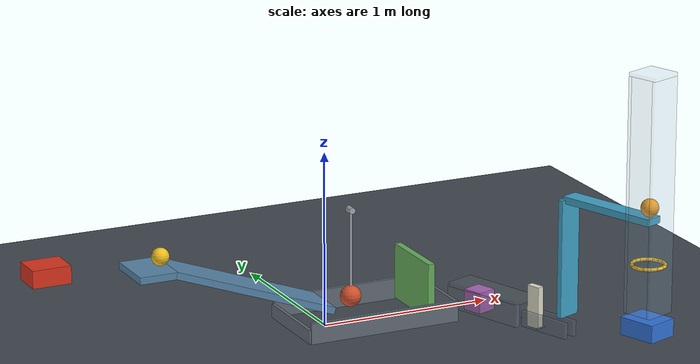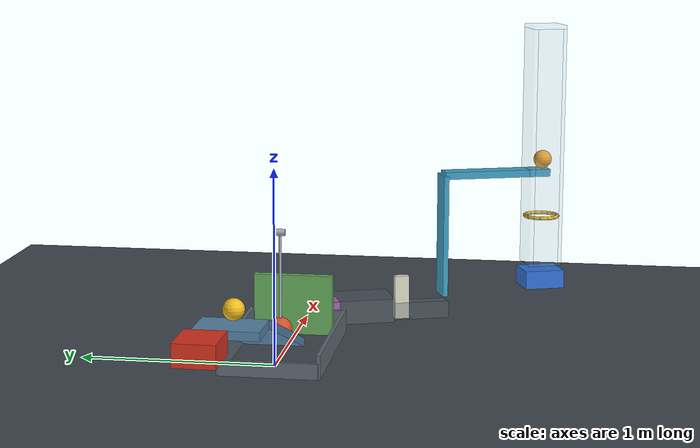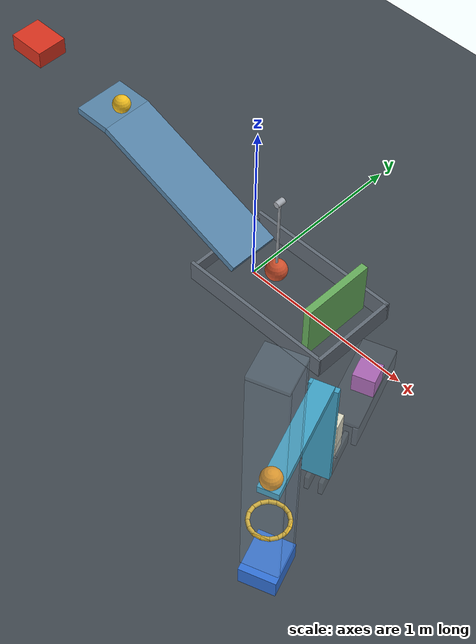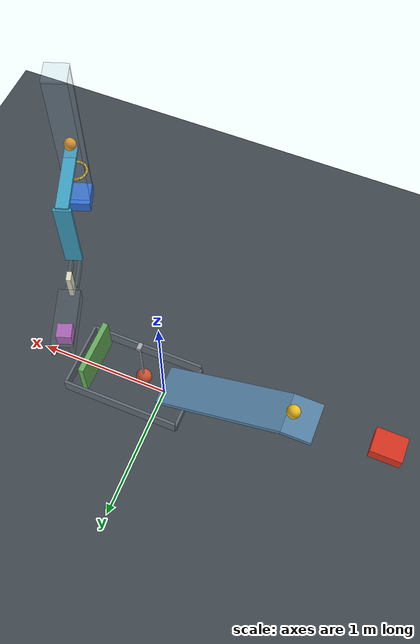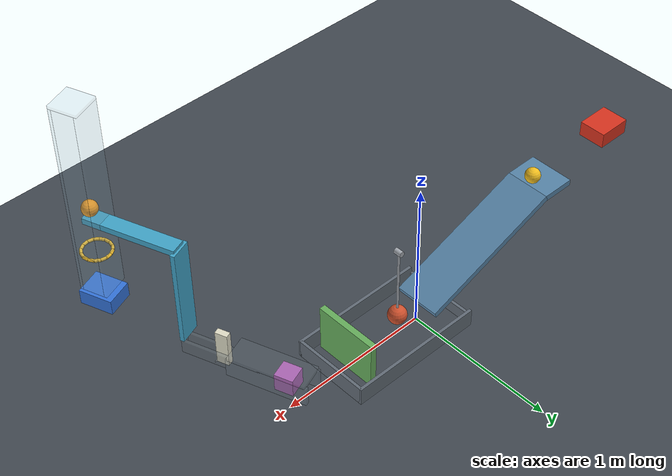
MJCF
<mujoco model="revised_guided_chain">
  <compiler angle="degree" autolimits="true"/>
  <option timestep="0.002" gravity="0 0 -9.81" integrator="implicitfast" cone="elliptic" iterations="100"/>
  <size njmax="5000" nconmax="1000"/>

  <visual>
    <headlight ambient="0.35 0.35 0.35" diffuse="0.65 0.65 0.65" specular="0.2 0.2 0.2"/>
    <map znear="0.01" zfar="30"/>
  </visual>

  <worldbody>
    <light name="main_light" pos="-1 -3 5" dir="0.2 0.4 -1" directional="true"/>
    <camera name="overview" pos="0 -4.8 3.0" xyaxes="1 0 0 0 0.48 0.877"/>

    <geom name="floor" type="plane" size="5 5 0.1" friction="0.68 0.005 0.005" condim="6" solref="0.006 0.6901" solimp="0.95 0.99 0.001" rgba="0.25 0.28 0.31 1"/>

    <!-- Compression-only axial spring: 0.20 m compression at reset, stiffness 18 N/m. -->
    <!-- Cart1 first contacts ball1 after 0.50 m of slide travel. -->
    <body name="cart1" pos="-1.63969262 0 0.54702014">
      <joint name="cart1_slide" type="slide" axis="1 0 0" damping="0.20" limited="true" range="0 0.58" solreflimit="0.006 1"/>
      <geom name="cart1_chassis" type="box" size="0.11 0.09 0.05" mass="0.50" friction="0.68 0.005 0.005" condim="6" solref="0.006 0.6901" solimp="0.95 0.99 0.001" rgba="0.85 0.20 0.12 1"/>
    </body>

    <body name="ball1" pos="-0.97969262 0 0.54202014">
      <freejoint name="ball1_free"/>
      <geom name="ball1_sphere" type="sphere" size="0.05" mass="0.20" friction="0.68 0.005 0.005" condim="6" solref="0.006 0.6901" solimp="0.95 0.99 0.001" rgba="0.95 0.75 0.12 1"/>
    </body>

    <!-- Incline length 1.00 m, width 0.30 m, slope 20 degrees, low end z=0.15 m. -->
    <body name="ramp1" pos="0 0 0">
      <geom name="ramp1_incline" type="box" pos="-0.47668671 0 0.30221629" quat="0.98480775 0 0.17364818 0" size="0.50 0.15 0.02" friction="0.68 0.005 0.005" condim="6" solref="0.006 0.6901" solimp="0.95 0.99 0.001" rgba="0.34 0.52 0.66 1"/>
      <geom name="ramp1_launch_shelf" type="box" pos="-1.04969262 0 0.47202014" size="0.11 0.15 0.02" friction="0.68 0.005 0.005" condim="6" solref="0.006 0.6901" solimp="0.95 0.99 0.001" rgba="0.34 0.52 0.66 1"/>
    </body>

    <!-- Pivot-to-bob distance 0.50 m; component masses total 0.35 kg. -->
    <!-- Initial bob near surface is 0.10 m beyond the ramp's low end. -->
    <body name="pendulum1" pos="0.16 0 0.65">
      <joint name="pendulum1_hinge" type="hinge" axis="0 -1 0" damping="0.04" limited="true" range="0 40" solreflimit="0.006 1"/>
      <geom name="pendulum1_hub" type="cylinder" quat="0.70710678 0.70710678 0 0" size="0.018 0.025" mass="0.01" friction="0.68 0.005 0.005" condim="6" solref="0.006 0.6901" solimp="0.95 0.99 0.001" rgba="0.65 0.67 0.70 1"/>
      <geom name="pendulum1_rod" type="capsule" fromto="0 0 0 0 0 -0.50" size="0.007" mass="0.04" friction="0.68 0.005 0.005" condim="6" solref="0.006 0.6901" solimp="0.95 0.99 0.001" rgba="0.65 0.67 0.70 1"/>
      <geom name="pendulum1_bob" type="sphere" pos="0 0 -0.50" size="0.06" mass="0.30" friction="0.68 0.005 0.005" condim="6" solref="0.006 0.6901" solimp="0.95 0.99 0.001" rgba="0.82 0.32 0.18 1"/>
    </body>

    <!-- Door panel: 0.42 m wide, 0.32 m high, 0.04 m thick. -->
    <body name="door1" pos="0.557 -0.21 0.18">
      <joint name="door1_hinge" type="hinge" axis="0 0 -1" damping="0.04" limited="true" range="0 70" solreflimit="0.006 1"/>
      <geom name="door1_panel" type="box" pos="0 0.21 0" size="0.02 0.21 0.16" mass="0.45" friction="0.68 0.005 0.005" condim="6" solref="0.006 0.6901" solimp="0.95 0.99 0.001" rgba="0.40 0.68 0.36 1"/>
    </body>

    <!-- Block moved inward along the panel and earlier along its swept path. -->
    <!-- Block travel direction is local +x, at world yaw -70 degrees. -->
    <!-- Initial block-front to domino-back separation remains 0.32 m. -->
    <body name="block1" pos="0.89957371 -0.12788117 0.06" quat="0.81915204 0 0 -0.57357644">
      <freejoint name="block1_free"/>
      <geom name="block1_cube" type="box" size="0.06 0.06 0.06" mass="0.35" friction="0.68 0.005 0.005" condim="6" solref="0.006 0.6901" solimp="0.95 0.99 0.001" rgba="0.73 0.38 0.75 1"/>
    </body>

    <!-- Close-clearance guides prevent tumbling; explicit normal-only pairs model ideal guide bearings. -->
    <!-- Block-floor contact retains sliding friction 0.68. -->
    <body name="block1_guide" pos="0.89957371 -0.12788117 0" quat="0.81915204 0 0 -0.57357644">
      <geom name="block1_guide_left" type="box" pos="0.10 -0.075 0.065" size="0.26 0.013 0.065" friction="0.68 0.005 0.005" condim="6" solref="0.006 0.6901" solimp="0.95 0.99 0.001" rgba="0.46 0.51 0.56 0.35"/>
      <geom name="block1_guide_right" type="box" pos="0.10 0.075 0.065" size="0.26 0.013 0.065" friction="0.68 0.005 0.005" condim="6" solref="0.006 0.6901" solimp="0.95 0.99 0.001" rgba="0.46 0.51 0.56 0.35"/>
      <geom name="block1_guide_roof" type="box" pos="0.10 0 0.135" size="0.25 0.088 0.012" friction="0.68 0.005 0.005" condim="6" solref="0.006 0.6901" solimp="0.95 0.99 0.001" rgba="0.46 0.51 0.56 0.20"/>
    </body>

    <body name="domino1" pos="1.04322221 -0.52255207 0.12" quat="0.81915204 0 0 -0.57357644">
      <freejoint name="domino1_free"/>
      <geom name="domino1_tile" type="box" size="0.04 0.02 0.12" mass="0.25" friction="0.68 0.005 0.005" condim="6" solref="0.006 0.6901" solimp="0.95 0.99 0.001" rgba="0.88 0.87 0.78 1"/>
    </body>

    <!-- Toe stop discourages translation of the domino's lower forward edge. -->
    <body name="domino1_guide" pos="1.04322221 -0.52255207 0" quat="0.81915204 0 0 -0.57357644">
      <geom name="domino1_guide_toe" type="capsule" fromto="0.044 -0.030 0.004 0.044 0.030 0.004" size="0.004" friction="0.68 0.005 0.005" condim="6" solref="0.006 0.6901" solimp="0.95 0.99 0.001" rgba="0.43 0.47 0.50 1"/>
      <geom name="domino1_guide_left" type="box" pos="0.10 -0.035 0.045" size="0.16 0.011 0.045" friction="0.68 0.005 0.005" condim="6" solref="0.006 0.6901" solimp="0.95 0.99 0.001" rgba="0.43 0.47 0.50 0.35"/>
      <geom name="domino1_guide_right" type="box" pos="0.10 0.035 0.045" size="0.16 0.011 0.045" friction="0.68 0.005 0.005" condim="6" solref="0.006 0.6901" solimp="0.95 0.99 0.001" rgba="0.43 0.47 0.50 0.35"/>
    </body>

    <!-- Main beam: 0.60 x 0.10 x 0.04 m, center hinge, total body mass 0.50 kg. -->
    <!-- Massless rigid striker reaches the floor-level domino. -->
    <!-- Initial domino-front to striker-front separation is approximately 0.18 m. -->
    <body name="lever1" pos="1.22586101 -1.02434417 0.80" quat="0.81915204 0 0 -0.57357644">
      <inertial pos="0 0 0" mass="0.50" diaginertia="0.0004833333 0.0150666667 0.0154166667"/>
      <joint name="lever1_hinge" type="hinge" axis="0 -1 0" damping="0.04" limited="true" range="0 45" solreflimit="0.006 1"/>
      <geom name="lever1_beam" type="box" size="0.30 0.05 0.02" mass="0.50" friction="0.68 0.005 0.005" condim="6" solref="0.006 0.6901" solimp="0.95 0.99 0.001" rgba="0.25 0.64 0.78 1"/>
      <geom name="lever1_left_striker" type="box" pos="-0.30 0 -0.3375" size="0.014 0.070 0.3375" mass="0" friction="0.68 0.005 0.005" condim="6" solref="0.006 0.6901" solimp="0.95 0.99 0.001" rgba="0.25 0.64 0.78 1"/>
    </body>

    <body name="ball2" pos="1.31820641 -1.27806117 0.87">
      <freejoint name="ball2_free"/>
      <geom name="ball2_sphere" type="sphere" size="0.05" mass="0.20" friction="0.68 0.005 0.005" condim="6" solref="0.006 0.6901" solimp="0.95 0.99 0.001" rgba="0.98 0.62 0.10 1"/>
    </body>

    <!-- Capsule polygon with an inscribed clear diameter of approximately 0.16 m. -->
    <!-- Horizontal ring center is 0.32 m directly below ball2's initial center. -->
    <body name="ring1" pos="1.31820641 -1.27806117 0.55">
      <geom name="ring1_segment_00" type="capsule" fromto="0.0917633 0 0 0.0847780 0.0351160 0" size="0.01" friction="0.68 0.005 0.005" condim="6" solref="0.006 0.6901" solimp="0.95 0.99 0.001" rgba="0.92 0.73 0.18 1"/>
      <geom name="ring1_segment_01" type="capsule" fromto="0.0847780 0.0351160 0 0.0648865 0.0648865 0" size="0.01" friction="0.68 0.005 0.005" condim="6" solref="0.006 0.6901" solimp="0.95 0.99 0.001" rgba="0.92 0.73 0.18 1"/>
      <geom name="ring1_segment_02" type="capsule" fromto="0.0648865 0.0648865 0 0.0351160 0.0847780 0" size="0.01" friction="0.68 0.005 0.005" condim="6" solref="0.006 0.6901" solimp="0.95 0.99 0.001" rgba="0.92 0.73 0.18 1"/>
      <geom name="ring1_segment_03" type="capsule" fromto="0.0351160 0.0847780 0 0 0.0917633 0" size="0.01" friction="0.68 0.005 0.005" condim="6" solref="0.006 0.6901" solimp="0.95 0.99 0.001" rgba="0.92 0.73 0.18 1"/>
      <geom name="ring1_segment_04" type="capsule" fromto="0 0.0917633 0 -0.0351160 0.0847780 0" size="0.01" friction="0.68 0.005 0.005" condim="6" solref="0.006 0.6901" solimp="0.95 0.99 0.001" rgba="0.92 0.73 0.18 1"/>
      <geom name="ring1_segment_05" type="capsule" fromto="-0.0351160 0.0847780 0 -0.0648865 0.0648865 0" size="0.01" friction="0.68 0.005 0.005" condim="6" solref="0.006 0.6901" solimp="0.95 0.99 0.001" rgba="0.92 0.73 0.18 1"/>
      <geom name="ring1_segment_06" type="capsule" fromto="-0.0648865 0.0648865 0 -0.0847780 0.0351160 0" size="0.01" friction="0.68 0.005 0.005" condim="6" solref="0.006 0.6901" solimp="0.95 0.99 0.001" rgba="0.92 0.73 0.18 1"/>
      <geom name="ring1_segment_07" type="capsule" fromto="-0.0847780 0.0351160 0 -0.0917633 0 0" size="0.01" friction="0.68 0.005 0.005" condim="6" solref="0.006 0.6901" solimp="0.95 0.99 0.001" rgba="0.92 0.73 0.18 1"/>
      <geom name="ring1_segment_08" type="capsule" fromto="-0.0917633 0 0 -0.0847780 -0.0351160 0" size="0.01" friction="0.68 0.005 0.005" condim="6" solref="0.006 0.6901" solimp="0.95 0.99 0.001" rgba="0.92 0.73 0.18 1"/>
      <geom name="ring1_segment_09" type="capsule" fromto="-0.0847780 -0.0351160 0 -0.0648865 -0.0648865 0" size="0.01" friction="0.68 0.005 0.005" condim="6" solref="0.006 0.6901" solimp="0.95 0.99 0.001" rgba="0.92 0.73 0.18 1"/>
      <geom name="ring1_segment_10" type="capsule" fromto="-0.0648865 -0.0648865 0 -0.0351160 -0.0847780 0" size="0.01" friction="0.68 0.005 0.005" condim="6" solref="0.006 0.6901" solimp="0.95 0.99 0.001" rgba="0.92 0.73 0.18 1"/>
      <geom name="ring1_segment_11" type="capsule" fromto="-0.0351160 -0.0847780 0 0 -0.0917633 0" size="0.01" friction="0.68 0.005 0.005" condim="6" solref="0.006 0.6901" solimp="0.95 0.99 0.001" rgba="0.92 0.73 0.18 1"/>
      <geom name="ring1_segment_12" type="capsule" fromto="0 -0.0917633 0 0.0351160 -0.0847780 0" size="0.01" friction="0.68 0.005 0.005" condim="6" solref="0.006 0.6901" solimp="0.95 0.99 0.001" rgba="0.92 0.73 0.18 1"/>
      <geom name="ring1_segment_13" type="capsule" fromto="0.0351160 -0.0847780 0 0.0648865 -0.0648865 0" size="0.01" friction="0.68 0.005 0.005" condim="6" solref="0.006 0.6901" solimp="0.95 0.99 0.001" rgba="0.92 0.73 0.18 1"/>
      <geom name="ring1_segment_14" type="capsule" fromto="0.0648865 -0.0648865 0 0.0847780 -0.0351160 0" size="0.01" friction="0.68 0.005 0.005" condim="6" solref="0.006 0.6901" solimp="0.95 0.99 0.001" rgba="0.92 0.73 0.18 1"/>
      <geom name="ring1_segment_15" type="capsule" fromto="0.0847780 -0.0351160 0 0.0917633 0 0" size="0.01" friction="0.68 0.005 0.005" condim="6" solref="0.006 0.6901" solimp="0.95 0.99 0.001" rgba="0.92 0.73 0.18 1"/>
    </body>

    <!-- Passive guide limits lateral displacement during ball2's rise and descent. -->
    <body name="ball2_guide" pos="1.31820641 -1.27806117 0" quat="0.81915204 0 0 -0.57357644">
      <geom name="ball2_guide_left" type="box" pos="-0.081 0 0.94" size="0.01 0.091 0.66" friction="0.68 0.005 0.005" condim="6" solref="0.006 0.6901" solimp="0.95 0.99 0.001" rgba="0.60 0.75 0.85 0.18"/>
      <geom name="ball2_guide_right" type="box" pos="0.081 0 0.94" size="0.01 0.091 0.66" friction="0.68 0.005 0.005" condim="6" solref="0.006 0.6901" solimp="0.95 0.99 0.001" rgba="0.60 0.75 0.85 0.18"/>
      <geom name="ball2_guide_front" type="box" pos="0 -0.081 0.94" size="0.071 0.01 0.66" friction="0.68 0.005 0.005" condim="6" solref="0.006 0.6901" solimp="0.95 0.99 0.001" rgba="0.60 0.75 0.85 0.18"/>
      <geom name="ball2_guide_back" type="box" pos="0 0.081 0.94" size="0.071 0.01 0.66" friction="0.68 0.005 0.005" condim="6" solref="0.006 0.6901" solimp="0.95 0.99 0.001" rgba="0.60 0.75 0.85 0.18"/>
      <geom name="ball2_guide_ceiling" type="box" pos="0 0 1.61" size="0.091 0.091 0.01" friction="0.68 0.005 0.005" condim="6" solref="0.006 0.6901" solimp="0.95 0.99 0.001" rgba="0.60 0.75 0.85 0.18"/>
    </body>

    <!-- Cart top z=0.25; first ball contact occurs with ball center z=0.30. -->
    <!-- Center descent from the ring plane to first cart contact is 0.25 m. -->
    <body name="cart2" pos="1.31820641 -1.27806117 0.20" quat="0.81915204 0 0 -0.57357644">
      <joint name="cart2_slide" type="slide" axis="1 0 0" damping="0.20" limited="true" range="-0.04 0.04" solreflimit="0.006 1"/>
      <geom name="cart2_chassis" type="box" size="0.11 0.09 0.05" mass="0.50" friction="0.68 0.005 0.005" condim="6" solref="0.006 0.6901" solimp="0.95 0.99 0.001" rgba="0.20 0.45 0.85 1"/>
    </body>

    <body name="ball1_catch" pos="0 0 0">
      <geom name="ball1_catch_front" type="box" pos="0.25 -0.25 0.06" size="0.45 0.01 0.06" friction="0.68 0.005 0.005" condim="6" solref="0.006 0.6901" solimp="0.95 0.99 0.001" rgba="0.38 0.42 0.46 1"/>
      <geom name="ball1_catch_back" type="box" pos="0.25 0.25 0.06" size="0.45 0.01 0.06" friction="0.68 0.005 0.005" condim="6" solref="0.006 0.6901" solimp="0.95 0.99 0.001" rgba="0.38 0.42 0.46 1"/>
      <geom name="ball1_catch_end" type="box" pos="0.69 0 0.06" size="0.01 0.25 0.06" friction="0.68 0.005 0.005" condim="6" solref="0.006 0.6901" solimp="0.95 0.99 0.001" rgba="0.38 0.42 0.46 1"/>
      <geom name="ball1_catch_start" type="box" pos="-0.20 0 0.04" size="0.01 0.25 0.04" friction="0.68 0.005 0.005" condim="6" solref="0.006 0.6901" solimp="0.95 0.99 0.001" rgba="0.38 0.42 0.46 1"/>
    </body>
  </worldbody>

  <contact>
    <!-- Normal-only guide contacts avoid dissipating longitudinal motion through rail friction. -->
    <pair name="block_left_bearing" geom1="block1_cube" geom2="block1_guide_left" condim="1" solref="0.006 0.6901" solimp="0.95 0.99 0.001"/>
    <pair name="block_right_bearing" geom1="block1_cube" geom2="block1_guide_right" condim="1" solref="0.006 0.6901" solimp="0.95 0.99 0.001"/>
    <pair name="block_roof_bearing" geom1="block1_cube" geom2="block1_guide_roof" condim="1" solref="0.006 0.6901" solimp="0.95 0.99 0.001"/>
    <pair name="domino_left_bearing" geom1="domino1_tile" geom2="domino1_guide_left" condim="1" solref="0.006 0.6901" solimp="0.95 0.99 0.001"/>
    <pair name="domino_right_bearing" geom1="domino1_tile" geom2="domino1_guide_right" condim="1" solref="0.006 0.6901" solimp="0.95 0.99 0.001"/>
    <pair name="ball2_left_bearing" geom1="ball2_sphere" geom2="ball2_guide_left" condim="1" solref="0.006 0.6901" solimp="0.95 0.99 0.001"/>
    <pair name="ball2_right_bearing" geom1="ball2_sphere" geom2="ball2_guide_right" condim="1" solref="0.006 0.6901" solimp="0.95 0.99 0.001"/>
    <pair name="ball2_front_bearing" geom1="ball2_sphere" geom2="ball2_guide_front" condim="1" solref="0.006 0.6901" solimp="0.95 0.99 0.001"/>
    <pair name="ball2_back_bearing" geom1="ball2_sphere" geom2="ball2_guide_back" condim="1" solref="0.006 0.6901" solimp="0.95 0.99 0.001"/>

    <exclude name="lever_guide_clearance" body1="lever1" body2="ball2_guide"/>
    <exclude name="cart2_guide_clearance" body1="cart2" body2="ball2_guide"/>
    <exclude name="door_catch_clearance" body1="door1" body2="ball1_catch"/>
    <exclude name="door_block_guide_clearance" body1="door1" body2="block1_guide"/>
    <exclude name="lever_domino_guide_clearance" body1="lever1" body2="domino1_guide"/>
  </contact>

  <tendon>
    <fixed name="cart1_axial_spring" stiffness="18" damping="0" springlength="0.20 10">
      <joint joint="cart1_slide" coef="1"/>
    </fixed>
  </tendon>

  <!-- Self-contained affine-gain assists produce zero torque when q=qvel=0. -->
  <!-- Controls remain at their keyframe values throughout the run. -->
  <actuator>
    <general name="pendulum1_assist" joint="pendulum1_hinge" gaintype="affine" gainprm="0 2.5 0.35" biastype="none" ctrllimited="true" ctrlrange="0 1" forcelimited="true" forcerange="0 3"/>
    <general name="door1_assist" joint="door1_hinge" gaintype="affine" gainprm="0 25 0.50" biastype="none" ctrllimited="true" ctrlrange="0 1" forcelimited="true" forcerange="0 10"/>
    <general name="lever1_assist" joint="lever1_hinge" gaintype="affine" gainprm="0 24 1.20" biastype="none" ctrllimited="true" ctrlrange="0 1" forcelimited="true" forcerange="0 4"/>
  </actuator>

  <!-- Reference positions and zero initial velocities. -->
  <keyframe>
    <key name="start" time="0" ctrl="1 1 1"/>
  </keyframe>
</mujoco>
